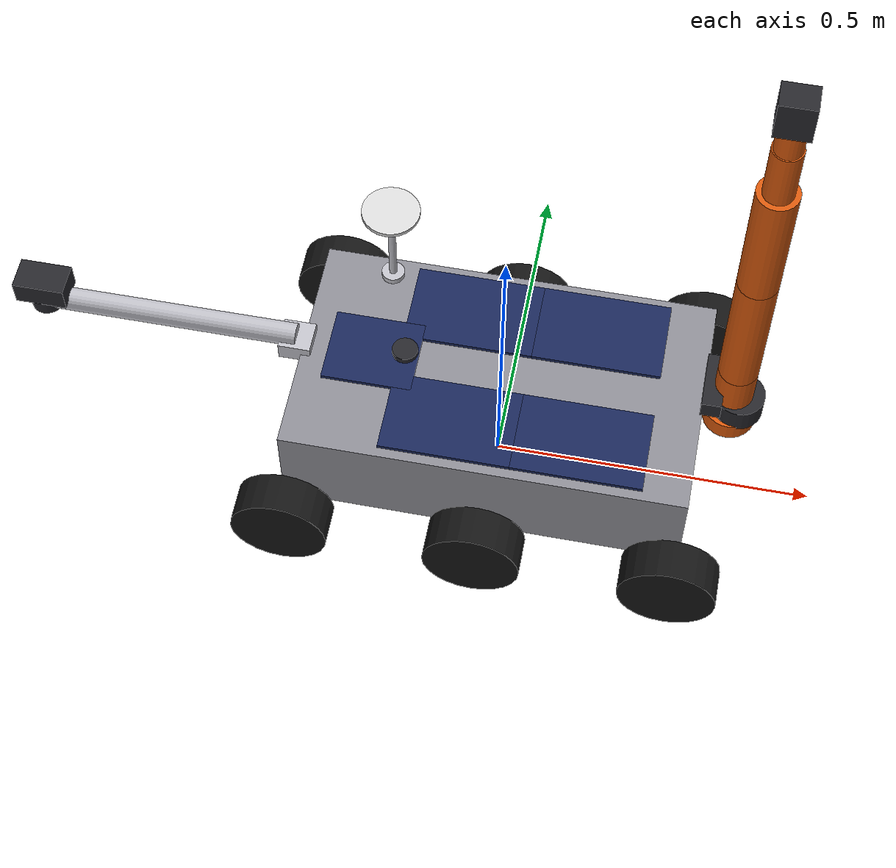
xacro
<?xml version="1.0"?>
<robot name="mars_rover" xmlns:xacro="http://www.ros.org/wiki/xacro">

  <xacro:include filename="$(find rover_description)/urdf/common.xacro"/>
  <xacro:include filename="$(find rover_description)/urdf/chassis.xacro"/>
  <xacro:include filename="$(find rover_description)/urdf/arm.xacro"/>
  <xacro:include filename="$(find rover_description)/urdf/mast.xacro"/>
  <xacro:include filename="$(find rover_description)/urdf/sensors.xacro"/>
  <xacro:include filename="$(find rover_description)/urdf/accessories.xacro"/>

</robot>

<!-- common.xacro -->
<robot xmlns:xacro="http://www.ros.org/wiki/xacro">

  <material name="chassis_grey">
    <color rgba="0.55 0.55 0.58 1.0"/>
  </material>
  <material name="wheel_black">
    <color rgba="0.08 0.08 0.08 1.0"/>
  </material>
  <material name="arm_orange">
    <color rgba="0.85 0.35 0.05 1.0"/>
  </material>
  <material name="mast_silver">
    <color rgba="0.75 0.75 0.78 1.0"/>
  </material>
  <material name="sensor_dark">
    <color rgba="0.15 0.15 0.17 1.0"/>
  </material>
  <material name="lens_glass">
    <color rgba="0.1 0.15 0.2 0.6"/>
  </material>
  <material name="solar_panel_blue">
    <color rgba="0.1 0.15 0.35 1.0"/>
  </material>
  <material name="antenna_hg_white">
    <color rgba="0.85 0.85 0.85 1.0"/>
  </material>

  <!-- Closed-form solid-box inertia about its own centroid. -->
  <xacro:macro name="box_inertia" params="mass x y z">
    <inertia
      ixx="${mass * (y*y + z*z) / 12.0}" ixy="0.0" ixz="0.0"
      iyy="${mass * (x*x + z*z) / 12.0}" iyz="0.0"
      izz="${mass * (x*x + y*y) / 12.0}"/>
  </xacro:macro>

  <!-- Closed-form solid-cylinder inertia about its own centroid, axis
       along the link's local Z (rotate the joint/link frame, not this
       macro, if the physical axis is X or Y). -->
  <xacro:macro name="cylinder_inertia" params="mass radius length">
    <inertia
      ixx="${mass * (3.0*radius*radius + length*length) / 12.0}" ixy="0.0" ixz="0.0"
      iyy="${mass * (3.0*radius*radius + length*length) / 12.0}" iyz="0.0"
      izz="${mass * radius*radius / 2.0}"/>
  </xacro:macro>

</robot>

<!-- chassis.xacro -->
<robot xmlns:xacro="http://www.ros.org/wiki/xacro">

  <!-- Geometry constants mirrored from rover_base/config/base_topology.yaml -
       keep the two in sync if either changes. -->
  <xacro:property name="wheelbase_front" value="0.30"/>
  <xacro:property name="wheelbase_rear" value="0.30"/>
  <xacro:property name="track" value="0.46"/>
  <xacro:property name="wheel_radius" value="0.075"/>
  <xacro:property name="wheel_width" value="0.06"/>
  <xacro:property name="wheel_mass" value="1.1"/>

  <xacro:property name="chassis_length" value="0.62"/>
  <xacro:property name="chassis_width" value="0.36"/>
  <xacro:property name="chassis_height" value="0.16"/>
  <xacro:property name="chassis_mass" value="14.0"/>
  <xacro:property name="chassis_ground_clearance" value="0.14"/>

  <link name="base_link"/>

  <joint name="base_to_chassis" type="fixed">
    <parent link="base_link"/>
    <child link="chassis_link"/>
    <origin xyz="0 0 ${chassis_ground_clearance}" rpy="0 0 0"/>
  </joint>

  <link name="chassis_link">
    <visual>
      <geometry>
        <box size="${chassis_length} ${chassis_width} ${chassis_height}"/>
      </geometry>
      <material name="chassis_grey"/>
    </visual>
    <collision>
      <geometry>
        <box size="${chassis_length} ${chassis_width} ${chassis_height}"/>
      </geometry>
    </collision>
    <inertial>
      <mass value="${chassis_mass}"/>
      <xacro:box_inertia mass="${chassis_mass}" x="${chassis_length}" y="${chassis_width}" z="${chassis_height}"/>
    </inertial>
  </link>

  <xacro:macro name="steer_wheel" params="name x y">
    <link name="${name}_steer_link">
      <visual>
        <geometry><cylinder radius="0.02" length="0.06"/></geometry>
        <material name="sensor_dark"/>
      </visual>
      <inertial>
        <mass value="0.3"/>
        <xacro:cylinder_inertia mass="0.3" radius="0.02" length="0.06"/>
      </inertial>
    </link>

    <joint name="${name}_steer_joint" type="revolute">
      <parent link="chassis_link"/>
      <child link="${name}_steer_link"/>
      <origin xyz="${x} ${y} ${-chassis_ground_clearance + wheel_radius}" rpy="0 0 0"/>
      <axis xyz="0 0 1"/>
      <limit lower="${-60.0 * 3.14159265/180.0}" upper="${60.0 * 3.14159265/180.0}" effort="5.0" velocity="3.0"/>
    </joint>

    <xacro:wheel_link_and_joint name="${name}" parent="${name}_steer_link" xyz="0 0 0"/>
  </xacro:macro>

  <!-- A fixed-orientation (non-steering) middle wheel. -->
  <xacro:macro name="fixed_wheel" params="name x y">
    <xacro:wheel_link_and_joint name="${name}" parent="chassis_link" xyz="${x} ${y} ${-chassis_ground_clearance + wheel_radius}"/>
  </xacro:macro>

  <xacro:macro name="wheel_link_and_joint" params="name parent xyz">
    <link name="${name}_wheel_link">
      <visual>
        <origin xyz="0 0 0" rpy="${3.14159265/2.0} 0 0"/>
        <geometry><cylinder radius="${wheel_radius}" length="${wheel_width}"/></geometry>
        <material name="wheel_black"/>
      </visual>
      <collision>
        <origin xyz="0 0 0" rpy="${3.14159265/2.0} 0 0"/>
        <geometry><cylinder radius="${wheel_radius}" length="${wheel_width}"/></geometry>
      </collision>
      <inertial>
        <mass value="${wheel_mass}"/>
        <origin xyz="0 0 0" rpy="${3.14159265/2.0} 0 0"/>
        <xacro:cylinder_inertia mass="${wheel_mass}" radius="${wheel_radius}" length="${wheel_width}"/>
      </inertial>
    </link>

    <joint name="${name}_drive_joint" type="continuous">
      <parent link="${parent}"/>
      <child link="${name}_wheel_link"/>
      <origin xyz="${xyz}" rpy="0 0 0"/>
      <axis xyz="0 1 0"/>
    </joint>
  </xacro:macro>

  <xacro:steer_wheel name="front_left" x="${wheelbase_front}" y="${track/2.0}"/>
  <xacro:steer_wheel name="front_right" x="${wheelbase_front}" y="${-track/2.0}"/>
  <xacro:fixed_wheel name="mid_left" x="0.0" y="${track/2.0}"/>
  <xacro:fixed_wheel name="mid_right" x="0.0" y="${-track/2.0}"/>
  <xacro:steer_wheel name="rear_left" x="${-wheelbase_rear}" y="${track/2.0}"/>
  <xacro:steer_wheel name="rear_right" x="${-wheelbase_rear}" y="${-track/2.0}"/>

</robot>

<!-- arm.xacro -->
<robot xmlns:xacro="http://www.ros.org/wiki/xacro">

  <xacro:property name="link1_len" value="0.10"/>
  <xacro:property name="link2_len" value="0.22"/>
  <xacro:property name="link3_len" value="0.20"/>
  <xacro:property name="link4_len" value="0.09"/>
  <xacro:property name="link5_len" value="0.07"/>
  <xacro:property name="arm_link_radius" value="0.03"/>
  <xacro:property name="arm_link_mass" value="0.6"/>

  <xacro:macro name="arm_segment" params="name length radius:=${arm_link_radius} mass:=${arm_link_mass}">
    <link name="${name}_link">
      <visual>
        <origin xyz="0 0 ${length/2.0}" rpy="0 0 0"/>
        <geometry><cylinder radius="${radius}" length="${length}"/></geometry>
        <material name="arm_orange"/>
      </visual>
      <collision>
        <origin xyz="0 0 ${length/2.0}" rpy="0 0 0"/>
        <geometry><cylinder radius="${radius}" length="${length}"/></geometry>
      </collision>
      <inertial>
        <origin xyz="0 0 ${length/2.0}" rpy="0 0 0"/>
        <mass value="${mass}"/>
        <xacro:cylinder_inertia mass="${mass}" radius="${radius}" length="${length}"/>
      </inertial>
    </link>
  </xacro:macro>

  <joint name="chassis_to_arm_base" type="fixed">
    <parent link="chassis_link"/>
    <child link="arm_base_link"/>
    <origin xyz="${wheelbase_front + 0.05} 0 ${chassis_height/2.0}" rpy="0 0 0"/>
  </joint>
  <link name="arm_base_link">
    <visual><geometry><cylinder radius="0.04" length="0.03"/></geometry><material name="arm_orange"/></visual>
    <inertial><mass value="0.4"/><xacro:cylinder_inertia mass="0.4" radius="0.04" length="0.03"/></inertial>
  </link>

  <!-- J1 shoulder_yaw -->
  <xacro:arm_segment name="j1" length="${link1_len}"/>
  <joint name="shoulder_yaw" type="revolute">
    <parent link="arm_base_link"/>
    <child link="j1_link"/>
    <origin xyz="0 0 0.015" rpy="0 0 0"/>
    <axis xyz="0 0 1"/>
    <limit lower="${-150.0*3.14159265/180.0}" upper="${150.0*3.14159265/180.0}" effort="8.0" velocity="0.033"/>
  </joint>

  <!-- J2 shoulder_pitch -->
  <xacro:arm_segment name="j2" length="${link2_len}"/>
  <joint name="shoulder_pitch" type="revolute">
    <parent link="j1_link"/>
    <child link="j2_link"/>
    <origin xyz="0 0 ${link1_len}" rpy="0 0 0"/>
    <axis xyz="0 1 0"/>
    <limit lower="${-100.0*3.14159265/180.0}" upper="${100.0*3.14159265/180.0}" effort="12.0" velocity="0.033"/>
  </joint>

  <!-- J3 elbow_pitch -->
  <xacro:arm_segment name="j3" length="${link3_len}"/>
  <joint name="elbow_pitch" type="revolute">
    <parent link="j2_link"/>
    <child link="j3_link"/>
    <origin xyz="0 0 ${link2_len}" rpy="0 0 0"/>
    <axis xyz="0 1 0"/>
    <limit lower="${-150.0*3.14159265/180.0}" upper="${150.0*3.14159265/180.0}" effort="8.0" velocity="0.033"/>
  </joint>

  <!-- J4 wrist_pitch (1st wrist joint) -->
  <xacro:arm_segment name="j4" length="${link4_len}" radius="0.022" mass="0.3"/>
  <joint name="wrist_pitch" type="revolute">
    <parent link="j3_link"/>
    <child link="j4_link"/>
    <origin xyz="0 0 ${link3_len}" rpy="0 0 0"/>
    <axis xyz="0 1 0"/>
    <limit lower="${-100.0*3.14159265/180.0}" upper="${100.0*3.14159265/180.0}" effort="4.0" velocity="0.033"/>
  </joint>

  <!-- J5 wrist_roll (2nd wrist joint) -->
  <xacro:arm_segment name="j5" length="${link5_len}" radius="0.02" mass="0.2"/>
  <joint name="wrist_roll" type="revolute">
    <parent link="j4_link"/>
    <child link="j5_link"/>
    <origin xyz="0 0 ${link4_len}" rpy="0 0 0"/>
    <axis xyz="0 0 1"/>
    <limit lower="${-170.0*3.14159265/180.0}" upper="${170.0*3.14159265/180.0}" effort="3.0" velocity="0.033"/>
  </joint>

  <link name="microscope_link">
    <visual>
      <geometry><box size="0.05 0.04 0.06"/></geometry>
      <material name="sensor_dark"/>
    </visual>
    <collision>
      <geometry><box size="0.05 0.04 0.06"/></geometry>
    </collision>
    <inertial>
      <mass value="0.15"/>
      <xacro:box_inertia mass="0.15" x="0.05" y="0.04" z="0.06"/>
    </inertial>
  </link>

  <joint name="microscope_focus_joint" type="prismatic">
    <parent link="j5_link"/>
    <child link="microscope_link"/>
    <origin xyz="0 0 ${link5_len}" rpy="0 0 0"/>
    <axis xyz="0 0 1"/>
    <limit lower="0.0" upper="0.015" effort="0.5" velocity="0.02"/>
  </joint>

  <link name="microscope_optical_frame"/>
  <joint name="microscope_optical_joint" type="fixed">
    <parent link="microscope_link"/>
    <child link="microscope_optical_frame"/>
    <origin xyz="0 0 0.03" rpy="${-3.14159265/2.0} 0 ${-3.14159265/2.0}"/>
  </joint>

</robot>

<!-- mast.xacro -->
<robot xmlns:xacro="http://www.ros.org/wiki/xacro">

  <xacro:property name="mast_length" value="0.40"/>
  <xacro:property name="mast_radius" value="0.018"/>
  <xacro:property name="mast_mass" value="0.7"/>

  <joint name="chassis_to_mast_base" type="fixed">
    <parent link="chassis_link"/>
    <child link="mast_base_link"/>
    <origin xyz="${-wheelbase_rear - 0.02} 0 ${chassis_height/2.0}" rpy="0 0 0"/>
  </joint>
  <link name="mast_base_link">
    <visual><geometry><box size="0.05 0.05 0.03"/></geometry><material name="mast_silver"/></visual>
    <inertial><mass value="0.3"/><xacro:box_inertia mass="0.3" x="0.05" y="0.05" z="0.03"/></inertial>
  </link>

  <link name="mast_link">
    <visual>
      <origin xyz="0 0 ${mast_length/2.0}" rpy="0 0 0"/>
      <geometry><cylinder radius="${mast_radius}" length="${mast_length}"/></geometry>
      <material name="mast_silver"/>
    </visual>
    <collision>
      <origin xyz="0 0 ${mast_length/2.0}" rpy="0 0 0"/>
      <geometry><cylinder radius="${mast_radius}" length="${mast_length}"/></geometry>
    </collision>
    <inertial>
      <origin xyz="0 0 ${mast_length/2.0}" rpy="0 0 0"/>
      <mass value="${mast_mass}"/>
      <xacro:cylinder_inertia mass="${mast_mass}" radius="${mast_radius}" length="${mast_length}"/>
    </inertial>
  </link>

  <joint name="mast_erect_joint" type="revolute">
    <parent link="mast_base_link"/>
    <child link="mast_link"/>
    <origin xyz="0 0 0.015" rpy="0 ${-3.14159265/2.0} 0"/>
    <axis xyz="0 1 0"/>
    <limit lower="0.0" upper="${3.14159265/2.0}" effort="6.0" velocity="0.5"/>
  </joint>

  <!-- 2-axis head at the mast tip. -->
  <link name="mast_head_yaw_link">
    <visual><geometry><cylinder radius="0.025" length="0.03"/></geometry><material name="sensor_dark"/></visual>
    <inertial><mass value="0.12"/><xacro:cylinder_inertia mass="0.12" radius="0.025" length="0.03"/></inertial>
  </link>
  <joint name="mast_head_yaw_joint" type="revolute">
    <parent link="mast_link"/>
    <child link="mast_head_yaw_link"/>
    <origin xyz="0 0 ${mast_length}" rpy="0 ${3.14159265/2.0} 0"/>
    <axis xyz="0 0 1"/>
    <limit lower="${-170.0*3.14159265/180.0}" upper="${170.0*3.14159265/180.0}" effort="2.0" velocity="2.0"/>
  </joint>

  <link name="mast_head_link">
    <visual><geometry><box size="0.08 0.05 0.04"/></geometry><material name="sensor_dark"/></visual>
    <collision><geometry><box size="0.08 0.05 0.04"/></geometry></collision>
    <inertial><mass value="0.25"/><xacro:box_inertia mass="0.25" x="0.08" y="0.05" z="0.04"/></inertial>
  </link>
  <joint name="mast_head_pitch_joint" type="revolute">
    <parent link="mast_head_yaw_link"/>
    <child link="mast_head_link"/>
    <origin xyz="0 0 0.03" rpy="0 0 0"/>
    <axis xyz="0 1 0"/>
    <limit lower="${-180.0*3.14159265/180.0}" upper="${180.0*3.14159265/180.0}" effort="2.0" velocity="2.0"/>
  </joint>

  <link name="mast_camera_optical_frame"/>
  <joint name="mast_camera_optical_joint" type="fixed">
    <parent link="mast_head_link"/>
    <child link="mast_camera_optical_frame"/>
    <origin xyz="0.04 0 0" rpy="${-3.14159265/2.0} 0 ${-3.14159265/2.0}"/>
  </joint>

</robot>

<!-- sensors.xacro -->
<robot xmlns:xacro="http://www.ros.org/wiki/xacro">

  <!-- BNO086 IMU (UART-RVC, wired straight to a USB-TTL converter) -
       mounted low and central so its readings are close to the
       vehicle's actual center of rotation. -->
  <link name="imu_link">
    <visual><geometry><box size="0.02 0.02 0.006"/></geometry><material name="sensor_dark"/></visual>
    <inertial><mass value="0.01"/><xacro:box_inertia mass="0.01" x="0.02" y="0.02" z="0.006"/></inertial>
  </link>
  <joint name="chassis_to_imu" type="fixed">
    <parent link="chassis_link"/>
    <child link="imu_link"/>
    <origin xyz="0 0 0" rpy="0 0 0"/>
  </joint>

  <!-- L76X GPS (wired straight to USB) - mounted high/rear with the
       clearest sky view available, away from the mast's own mass. -->
  <link name="gps_link">
    <visual><geometry><cylinder radius="0.02" length="0.01"/></geometry><material name="sensor_dark"/></visual>
    <inertial><mass value="0.02"/><xacro:cylinder_inertia mass="0.02" radius="0.02" length="0.01"/></inertial>
  </link>
  <joint name="chassis_to_gps" type="fixed">
    <parent link="chassis_link"/>
    <child link="gps_link"/>
    <origin xyz="${-wheelbase_rear/2.0} 0 ${chassis_height/2.0 + 0.02}" rpy="0 0 0"/>
  </joint>

  <!-- RPLIDAR C1 (Waveshare/Slamtec) - front-mounted, unobstructed
       360-degree scan plane, used for autonomous navigation. -->
  <link name="lidar_link">
    <visual><geometry><cylinder radius="0.038" length="0.04"/></geometry><material name="sensor_dark"/></visual>
    <collision><geometry><cylinder radius="0.038" length="0.04"/></geometry></collision>
    <inertial><mass value="0.19"/><xacro:cylinder_inertia mass="0.19" radius="0.038" length="0.04"/></inertial>
  </link>
  <joint name="chassis_to_lidar" type="fixed">
    <parent link="chassis_link"/>
    <child link="lidar_link"/>
    <origin xyz="${wheelbase_front + 0.06} 0 ${chassis_height/2.0 + 0.03}" rpy="0 0 0"/>
  </joint>

  <link name="main_camera_link">
    <visual><geometry><box size="0.03 0.09 0.03"/></geometry><material name="sensor_dark"/></visual>
    <collision><geometry><box size="0.03 0.09 0.03"/></geometry></collision>
    <inertial><mass value="0.08"/><xacro:box_inertia mass="0.08" x="0.03" y="0.09" z="0.03"/></inertial>
  </link>
  <joint name="chassis_to_main_camera" type="fixed">
    <parent link="chassis_link"/>
    <child link="main_camera_link"/>
    <origin xyz="${wheelbase_front + 0.02} 0 ${chassis_height/2.0 + 0.06}" rpy="0 0 0"/>
  </joint>

  <link name="main_camera_optical_frame"/>
  <joint name="main_camera_optical_joint" type="fixed">
    <parent link="main_camera_link"/>
    <child link="main_camera_optical_frame"/>
    <origin xyz="0 0 0" rpy="${-3.14159265/2.0} 0 ${-3.14159265/2.0}"/>
  </joint>

</robot>

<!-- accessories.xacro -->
<robot xmlns:xacro="http://www.ros.org/wiki/xacro">

  <xacro:property name="panel_length" value="0.20"/>
  <xacro:property name="panel_width" value="0.13"/>
  <xacro:property name="panel_thickness" value="0.006"/>
  <xacro:property name="panel_mass" value="0.25"/>

  <xacro:macro name="solar_panel" params="name x y">
    <joint name="${name}_panel_joint" type="fixed">
      <parent link="chassis_link"/>
      <child link="${name}_panel_link"/>
      <origin xyz="${x} ${y} ${chassis_height/2.0 + panel_thickness/2.0}" rpy="0 0 0"/>
    </joint>
    <link name="${name}_panel_link">
      <visual>
        <geometry><box size="${panel_length} ${panel_width} ${panel_thickness}"/></geometry>
        <material name="solar_panel_blue"/>
      </visual>
      <collision>
        <geometry><box size="${panel_length} ${panel_width} ${panel_thickness}"/></geometry>
      </collision>
      <inertial>
        <mass value="${panel_mass}"/>
        <xacro:box_inertia mass="${panel_mass}" x="${panel_length}" y="${panel_width}" z="${panel_thickness}"/>
      </inertial>
    </link>
  </xacro:macro>

  <!-- 4 symmetric panels (front/rear x left/right) plus 1 smaller
       rear-center panel, all clear of the arm mount (x=wheelbase_front+0.05)
       and mast mount (x=-wheelbase_rear-0.02). -->
  <xacro:solar_panel name="front_left" x="0.14" y="0.10"/>
  <xacro:solar_panel name="front_right" x="0.14" y="-0.10"/>
  <xacro:solar_panel name="rear_left" x="-0.06" y="0.10"/>
  <xacro:solar_panel name="rear_right" x="-0.06" y="-0.10"/>

  <joint name="rear_middle_panel_joint" type="fixed">
    <parent link="chassis_link"/>
    <child link="rear_middle_panel_link"/>
    <origin xyz="-0.20 0 ${chassis_height/2.0 + panel_thickness/2.0}" rpy="0 0 0"/>
  </joint>
  <link name="rear_middle_panel_link">
    <visual>
      <geometry><box size="0.14 0.12 ${panel_thickness}"/></geometry>
      <material name="solar_panel_blue"/>
    </visual>
    <collision>
      <geometry><box size="0.14 0.12 ${panel_thickness}"/></geometry>
    </collision>
    <inertial>
      <mass value="0.15"/>
      <xacro:box_inertia mass="0.15" x="0.14" y="0.12" z="${panel_thickness}"/>
    </inertial>
  </link>

  <!-- High-gain antenna: base -> short mast -> dish. Mounted rear,
       offset to one side to clear the mast's own mount point. -->
  <xacro:property name="antenna_mast_length" value="0.15"/>

  <joint name="antenna_base_joint" type="fixed">
    <parent link="chassis_link"/>
    <child link="antenna_base_link"/>
    <origin xyz="-0.20 0.15 ${chassis_height/2.0}" rpy="0 0 0"/>
  </joint>
  <link name="antenna_base_link">
    <visual>
      <geometry><cylinder radius="0.018" length="0.02"/></geometry>
      <material name="mast_silver"/>
    </visual>
    <inertial>
      <mass value="0.05"/>
      <xacro:cylinder_inertia mass="0.05" radius="0.018" length="0.02"/>
    </inertial>
  </link>

  <!-- Fixed for now (see header note) - would become revolute (axis
       "0 0 1") if real pan actuation hardware is ever added. -->
  <joint name="antenna_pan_joint" type="fixed">
    <parent link="antenna_base_link"/>
    <child link="antenna_mast_link"/>
    <origin xyz="0 0 0.01" rpy="0 0 0"/>
  </joint>
  <link name="antenna_mast_link">
    <visual>
      <origin xyz="0 0 ${antenna_mast_length/2.0}" rpy="0 0 0"/>
      <geometry><cylinder radius="0.006" length="${antenna_mast_length}"/></geometry>
      <material name="mast_silver"/>
    </visual>
    <inertial>
      <origin xyz="0 0 ${antenna_mast_length/2.0}" rpy="0 0 0"/>
      <mass value="0.08"/>
      <xacro:cylinder_inertia mass="0.08" radius="0.006" length="${antenna_mast_length}"/>
    </inertial>
  </link>

  <!-- Fixed for now (see header note) - would become revolute (axis
       "0 1 0") if real tilt actuation hardware is ever added. -->
  <joint name="antenna_tilt_joint" type="fixed">
    <parent link="antenna_mast_link"/>
    <child link="antenna_dish_link"/>
    <origin xyz="0 0 ${antenna_mast_length}" rpy="0 0 0"/>
  </joint>
  <link name="antenna_dish_link">
    <visual>
      <origin xyz="0 0 0.003" rpy="0 0 0"/>
      <geometry><cylinder radius="0.045" length="0.006"/></geometry>
      <material name="antenna_hg_white"/>
    </visual>
    <collision>
      <origin xyz="0 0 0.003" rpy="0 0 0"/>
      <geometry><cylinder radius="0.045" length="0.006"/></geometry>
    </collision>
    <inertial>
      <mass value="0.06"/>
      <xacro:cylinder_inertia mass="0.06" radius="0.045" length="0.006"/>
    </inertial>
  </link>

</robot>
